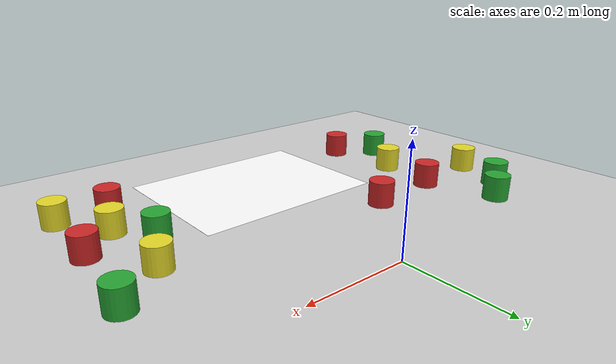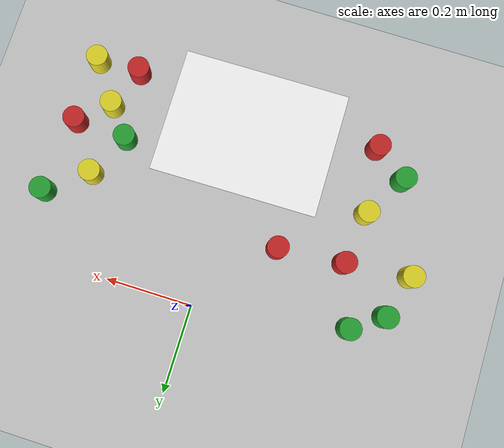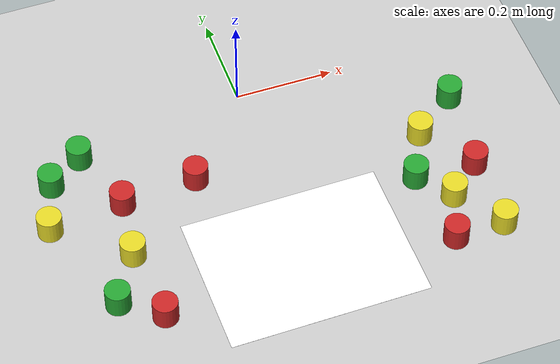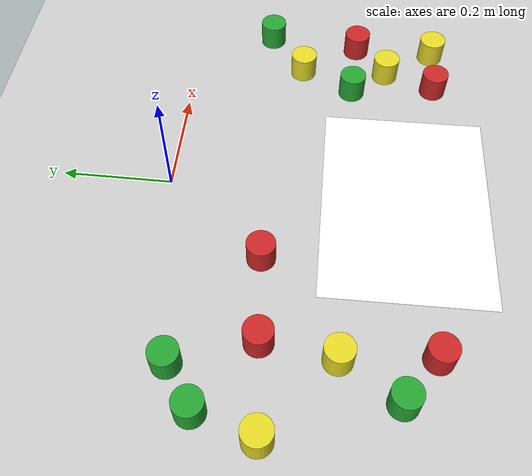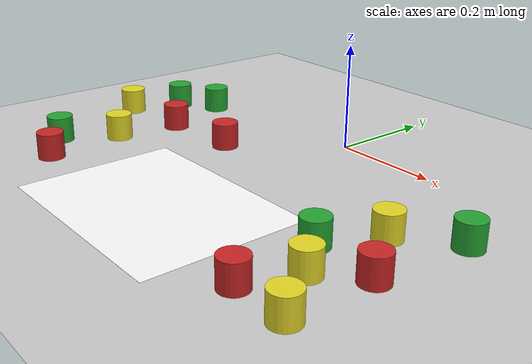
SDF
<sdf version="1.6">
 <world name="default">
  <model name="ground_plane">
   <static>1</static>
   <link name="link">
    <collision name="collision">
     <geometry><plane><normal>0 0 1</normal><size>100 100</size></plane></geometry>
     <surface>
      <contact><collide_bitmask>65535</collide_bitmask></contact>
      <friction><ode><mu>100</mu><mu2>50</mu2></ode></friction>
     </surface>
    </collision>
    <visual name="visual">
     <cast_shadows>0</cast_shadows>
     <geometry><plane><normal>0 0 1</normal><size>100 100</size></plane></geometry>
     <material>
      <script><uri>file://media/materials/scripts/gazebo.material</uri><name>Gazebo/Grey</name></script>
     </material>
    </visual>
   </link>
  </model>
  <model name="traffic_lights_board">
   <link name="link">
    <inertial>
     <mass>1</mass>
     <inertia><ixx>1</ixx><ixy>0</ixy><ixz>0</ixz><iyy>1</iyy><iyz>0</iyz><izz>1</izz></inertia>
    </inertial>
    <visual name="visual">
     <geometry><box><size>0.3 0.4 0.0001</size></box></geometry>
     <material>
      <script>
       <uri>model://traffic_lights_board/materials/scripts</uri>
       <uri>model://traffic_lights_board/materials/textures</uri>
       <name>Grid43</name>
      </script>
      <shader type="pixel"><normal_map>__default__</normal_map></shader>
      <ambient>1 1 1 1</ambient>
      <diffuse>1 1 1 1</diffuse>
      <specular>0 0 0 1</specular>
      <emissive>0 0 0 1</emissive>
     </material>
    </visual>
    <collision name="collision">
     <geometry><box><size>0.3 0.4 0.0003</size></box></geometry>
     <surface>
      <friction>
       <ode><mu>1</mu><mu2>1</mu2><fdir1>0 0 0</fdir1><slip1>0</slip1><slip2>0</slip2></ode>
       <torsional>
        <coefficient>1</coefficient>
        <patch_radius>0</patch_radius>
        <surface_radius>0</surface_radius>
        <use_patch_radius>1</use_patch_radius>
        <ode><slip>0</slip></ode>
       </torsional>
      </friction>
      <bounce><restitution_coefficient>0</restitution_coefficient><threshold>1e+06</threshold></bounce>
      <contact>
       <collide_without_contact>0</collide_without_contact>
       <collide_without_contact_bitmask>1</collide_without_contact_bitmask>
       <collide_bitmask>1</collide_bitmask>
       <ode>
        <soft_cfm>0</soft_cfm>
        <soft_erp>0.2</soft_erp>
        <kp>1e+13</kp>
        <kd>1</kd>
        <max_vel>0.01</max_vel>
        <min_depth>0</min_depth>
       </ode>
       <bullet>
        <split_impulse>1</split_impulse>
        <split_impulse_penetration_threshold>-0.01</split_impulse_penetration_threshold>
        <soft_cfm>0</soft_cfm>
        <soft_erp>0.2</soft_erp>
        <kp>1e+13</kp>
        <kd>1</kd>
       </bullet>
      </contact>
     </surface>
    </collision>
   </link>
   <static>1</static>
   <pose>-0.008431 -0.425021 0 0 0 -1.56</pose>
  </model>
  <model name="green_cylinder_short">
   <link name="blue_cylinder_link">
    <inertial>
     <mass>1</mass>
     <inertia><ixx>0.145833</ixx><ixy>0</ixy><ixz>0</ixz><iyy>0.145833</iyy><iyz>0</iyz><izz>0.125</izz></inertia>
    </inertial>
    <pose>-0 -0 0.025 0 -0 0</pose>
    <visual name="visual">
     <geometry><cylinder><radius>0.025</radius><length>0.05</length></cylinder></geometry>
     <material>
      <script><name>Gazebo/Green</name><uri>file://media/materials/scripts/gazebo.material</uri></script>
      <shader type="pixel"><normal_map>__default__</normal_map></shader>
      <ambient>0 1 0 1</ambient>
      <diffuse>0 1 0 1</diffuse>
      <specular>0 1 0 1</specular>
      <emissive>0 1 0 1</emissive>
     </material>
    </visual>
    <collision name="collision">
     <geometry><cylinder><radius>0.025</radius><length>0.05</length></cylinder></geometry>
     <surface>
      <friction>
       <ode><mu>1</mu><mu2>1</mu2><fdir1>0 0 0</fdir1><slip1>0</slip1><slip2>0</slip2></ode>
       <torsional>
        <coefficient>1</coefficient>
        <patch_radius>0</patch_radius>
        <surface_radius>0</surface_radius>
        <use_patch_radius>1</use_patch_radius>
        <ode><slip>0</slip></ode>
       </torsional>
      </friction>
      <bounce><restitution_coefficient>0</restitution_coefficient><threshold>1e+06</threshold></bounce>
      <contact>
       <collide_without_contact>0</collide_without_contact>
       <collide_without_contact_bitmask>1</collide_without_contact_bitmask>
       <collide_bitmask>1</collide_bitmask>
       <ode>
        <soft_cfm>0</soft_cfm>
        <soft_erp>0.2</soft_erp>
        <kp>1e+13</kp>
        <kd>1</kd>
        <max_vel>0.01</max_vel>
        <min_depth>0</min_depth>
       </ode>
       <bullet>
        <split_impulse>1</split_impulse>
        <split_impulse_penetration_threshold>-0.01</split_impulse_penetration_threshold>
        <soft_cfm>0</soft_cfm>
        <soft_erp>0.2</soft_erp>
        <kp>1e+13</kp>
        <kd>1</kd>
       </bullet>
      </contact>
     </surface>
    </collision>
   </link>
   <static>0</static>
   <pose>-0.347585 -0.056651 0 0 -0 0</pose>
  </model>
  <model name="green_cylinder_short_clone">
   <link name="blue_cylinder_link">
    <inertial>
     <mass>1</mass>
     <inertia><ixx>0.145833</ixx><ixy>0</ixy><ixz>0</ixz><iyy>0.145833</iyy><iyz>0</iyz><izz>0.125</izz></inertia>
    </inertial>
    <pose>-0 -0 0.025 0 -0 0</pose>
    <visual name="visual">
     <geometry><cylinder><radius>0.025</radius><length>0.05</length></cylinder></geometry>
     <material>
      <script><name>Gazebo/Green</name><uri>file://media/materials/scripts/gazebo.material</uri></script>
      <shader type="pixel"><normal_map>__default__</normal_map></shader>
      <ambient>0 1 0 1</ambient>
      <diffuse>0 1 0 1</diffuse>
      <specular>0 1 0 1</specular>
      <emissive>0 1 0 1</emissive>
     </material>
    </visual>
    <collision name="collision">
     <geometry><cylinder><radius>0.025</radius><length>0.05</length></cylinder></geometry>
     <surface>
      <friction>
       <ode><mu>1</mu><mu2>1</mu2><fdir1>0 0 0</fdir1><slip1>0</slip1><slip2>0</slip2></ode>
       <torsional>
        <coefficient>1</coefficient>
        <patch_radius>0</patch_radius>
        <surface_radius>0</surface_radius>
        <use_patch_radius>1</use_patch_radius>
        <ode><slip>0</slip></ode>
       </torsional>
      </friction>
      <bounce><restitution_coefficient>0</restitution_coefficient><threshold>1e+06</threshold></bounce>
      <contact>
       <collide_without_contact>0</collide_without_contact>
       <collide_without_contact_bitmask>1</collide_without_contact_bitmask>
       <collide_bitmask>1</collide_bitmask>
       <ode>
        <soft_cfm>0</soft_cfm>
        <soft_erp>0.2</soft_erp>
        <kp>1e+13</kp>
        <kd>1</kd>
        <max_vel>0.01</max_vel>
        <min_depth>0</min_depth>
       </ode>
       <bullet>
        <split_impulse>1</split_impulse>
        <split_impulse_penetration_threshold>-0.01</split_impulse_penetration_threshold>
        <soft_cfm>0</soft_cfm>
        <soft_erp>0.2</soft_erp>
        <kp>1e+13</kp>
        <kd>1</kd>
       </bullet>
      </contact>
     </surface>
    </collision>
   </link>
   <static>0</static>
   <pose>-0.418127 -0.105245 0 -1e-06 1e-06 -1e-06</pose>
  </model>
  <model name="green_cylinder_short_clone_0">
   <link name="blue_cylinder_link">
    <inertial>
     <mass>1</mass>
     <inertia><ixx>0.145833</ixx><ixy>0</ixy><ixz>0</ixz><iyy>0.145833</iyy><iyz>0</iyz><izz>0.125</izz></inertia>
    </inertial>
    <pose>-0 -0 0.025 0 -0 0</pose>
    <visual name="visual">
     <geometry><cylinder><radius>0.025</radius><length>0.05</length></cylinder></geometry>
     <material>
      <script><name>Gazebo/Green</name><uri>file://media/materials/scripts/gazebo.material</uri></script>
      <shader type="pixel"><normal_map>__default__</normal_map></shader>
      <ambient>0 1 0 1</ambient>
      <diffuse>0 1 0 1</diffuse>
      <specular>0 1 0 1</specular>
      <emissive>0 1 0 1</emissive>
     </material>
    </visual>
    <collision name="collision">
     <geometry><cylinder><radius>0.025</radius><length>0.05</length></cylinder></geometry>
     <surface>
      <friction>
       <ode><mu>1</mu><mu2>1</mu2><fdir1>0 0 0</fdir1><slip1>0</slip1><slip2>0</slip2></ode>
       <torsional>
        <coefficient>1</coefficient>
        <patch_radius>0</patch_radius>
        <surface_radius>0</surface_radius>
        <use_patch_radius>1</use_patch_radius>
        <ode><slip>0</slip></ode>
       </torsional>
      </friction>
      <bounce><restitution_coefficient>0</restitution_coefficient><threshold>1e+06</threshold></bounce>
      <contact>
       <collide_without_contact>0</collide_without_contact>
       <collide_without_contact_bitmask>1</collide_without_contact_bitmask>
       <collide_bitmask>1</collide_bitmask>
       <ode>
        <soft_cfm>0</soft_cfm>
        <soft_erp>0.2</soft_erp>
        <kp>1e+13</kp>
        <kd>1</kd>
        <max_vel>0.01</max_vel>
        <min_depth>0</min_depth>
       </ode>
       <bullet>
        <split_impulse>1</split_impulse>
        <split_impulse_penetration_threshold>-0.01</split_impulse_penetration_threshold>
        <soft_cfm>0</soft_cfm>
        <soft_erp>0.2</soft_erp>
        <kp>1e+13</kp>
        <kd>1</kd>
       </bullet>
      </contact>
     </surface>
    </collision>
   </link>
   <static>0</static>
   <pose>0.4 -0.149757 0 -1e-06 1e-06 -1e-06</pose>
  </model>
  <model name="green_cylinder_short_clone_1">
   <link name="blue_cylinder_link">
    <inertial>
     <mass>1</mass>
     <inertia><ixx>0.145833</ixx><ixy>0</ixy><ixz>0</ixz><iyy>0.145833</iyy><iyz>0</iyz><izz>0.125</izz></inertia>
    </inertial>
    <pose>-0 -0 0.025 0 -0 0</pose>
    <visual name="visual">
     <geometry><cylinder><radius>0.025</radius><length>0.05</length></cylinder></geometry>
     <material>
      <script><name>Gazebo/Green</name><uri>file://media/materials/scripts/gazebo.material</uri></script>
      <shader type="pixel"><normal_map>__default__</normal_map></shader>
      <ambient>0 1 0 1</ambient>
      <diffuse>0 1 0 1</diffuse>
      <specular>0 1 0 1</specular>
      <emissive>0 1 0 1</emissive>
     </material>
    </visual>
    <collision name="collision">
     <geometry><cylinder><radius>0.025</radius><length>0.05</length></cylinder></geometry>
     <surface>
      <friction>
       <ode><mu>1</mu><mu2>1</mu2><fdir1>0 0 0</fdir1><slip1>0</slip1><slip2>0</slip2></ode>
       <torsional>
        <coefficient>1</coefficient>
        <patch_radius>0</patch_radius>
        <surface_radius>0</surface_radius>
        <use_patch_radius>1</use_patch_radius>
        <ode><slip>0</slip></ode>
       </torsional>
      </friction>
      <bounce><restitution_coefficient>0</restitution_coefficient><threshold>1e+06</threshold></bounce>
      <contact>
       <collide_without_contact>0</collide_without_contact>
       <collide_without_contact_bitmask>1</collide_without_contact_bitmask>
       <collide_bitmask>1</collide_bitmask>
       <ode>
        <soft_cfm>0</soft_cfm>
        <soft_erp>0.2</soft_erp>
        <kp>1e+13</kp>
        <kd>1</kd>
        <max_vel>0.01</max_vel>
        <min_depth>0</min_depth>
       </ode>
       <bullet>
        <split_impulse>1</split_impulse>
        <split_impulse_penetration_threshold>-0.01</split_impulse_penetration_threshold>
        <soft_cfm>0</soft_cfm>
        <soft_erp>0.2</soft_erp>
        <kp>1e+13</kp>
        <kd>1</kd>
       </bullet>
      </contact>
     </surface>
    </collision>
   </link>
   <static>0</static>
   <pose>-0.375425 -0.415999 0 -1e-06 1e-06 -1e-06</pose>
  </model>
  <model name="green_cylinder_short_clone_2">
   <link name="blue_cylinder_link">
    <inertial>
     <mass>1</mass>
     <inertia><ixx>0.145833</ixx><ixy>0</ixy><ixz>0</ixz><iyy>0.145833</iyy><iyz>0</iyz><izz>0.125</izz></inertia>
    </inertial>
    <pose>-0 -0 0.025 0 -0 0</pose>
    <visual name="visual">
     <geometry><cylinder><radius>0.025</radius><length>0.05</length></cylinder></geometry>
     <material>
      <script><name>Gazebo/Green</name><uri>file://media/materials/scripts/gazebo.material</uri></script>
      <shader type="pixel"><normal_map>__default__</normal_map></shader>
      <ambient>0 1 0 1</ambient>
      <diffuse>0 1 0 1</diffuse>
      <specular>0 1 0 1</specular>
      <emissive>0 1 0 1</emissive>
     </material>
    </visual>
    <collision name="collision">
     <geometry><cylinder><radius>0.025</radius><length>0.05</length></cylinder></geometry>
     <surface>
      <friction>
       <ode><mu>1</mu><mu2>1</mu2><fdir1>0 0 0</fdir1><slip1>0</slip1><slip2>0</slip2></ode>
       <torsional>
        <coefficient>1</coefficient>
        <patch_radius>0</patch_radius>
        <surface_radius>0</surface_radius>
        <use_patch_radius>1</use_patch_radius>
        <ode><slip>0</slip></ode>
       </torsional>
      </friction>
      <bounce><restitution_coefficient>0</restitution_coefficient><threshold>1e+06</threshold></bounce>
      <contact>
       <collide_without_contact>0</collide_without_contact>
       <collide_without_contact_bitmask>1</collide_without_contact_bitmask>
       <collide_bitmask>1</collide_bitmask>
       <ode>
        <soft_cfm>0</soft_cfm>
        <soft_erp>0.2</soft_erp>
        <kp>1e+13</kp>
        <kd>1</kd>
        <max_vel>0.01</max_vel>
        <min_depth>0</min_depth>
       </ode>
       <bullet>
        <split_impulse>1</split_impulse>
        <split_impulse_penetration_threshold>-0.01</split_impulse_penetration_threshold>
        <soft_cfm>0</soft_cfm>
        <soft_erp>0.2</soft_erp>
        <kp>1e+13</kp>
        <kd>1</kd>
       </bullet>
      </contact>
     </surface>
    </collision>
   </link>
   <static>0</static>
   <pose>0.26 -0.32 0 -1e-06 1e-06 -1e-06</pose>
  </model>
  <model name="yellow_cylinder_short">
   <link name="blue_cylinder_link">
    <inertial>
     <mass>1</mass>
     <inertia><ixx>0.145833</ixx><ixy>0</ixy><ixz>0</ixz><iyy>0.145833</iyy><iyz>0</iyz><izz>0.125</izz></inertia>
    </inertial>
    <pose>-0 -0 0.025 0 -0 0</pose>
    <visual name="visual">
     <geometry><cylinder><radius>0.025</radius><length>0.05</length></cylinder></geometry>
     <material>
      <script><name>Gazebo/Yellow</name><uri>file://media/materials/scripts/gazebo.material</uri></script>
      <shader type="pixel"><normal_map>__default__</normal_map></shader>
      <ambient>1 0.8 0 1</ambient>
      <diffuse>1 0.8 0 1</diffuse>
      <specular>1 0.8 0 1</specular>
      <emissive>1 0.8 0 1</emissive>
     </material>
    </visual>
    <collision name="collision">
     <geometry><cylinder><radius>0.025</radius><length>0.05</length></cylinder></geometry>
     <surface>
      <friction>
       <ode><mu>1</mu><mu2>1</mu2><fdir1>0 0 0</fdir1><slip1>0</slip1><slip2>0</slip2></ode>
       <torsional>
        <coefficient>1</coefficient>
        <patch_radius>0</patch_radius>
        <surface_radius>0</surface_radius>
        <use_patch_radius>1</use_patch_radius>
        <ode><slip>0</slip></ode>
       </torsional>
      </friction>
      <bounce><restitution_coefficient>0</restitution_coefficient><threshold>1e+06</threshold></bounce>
      <contact>
       <collide_without_contact>0</collide_without_contact>
       <collide_without_contact_bitmask>1</collide_without_contact_bitmask>
       <collide_bitmask>1</collide_bitmask>
       <ode>
        <soft_cfm>0</soft_cfm>
        <soft_erp>0.2</soft_erp>
        <kp>1e+13</kp>
        <kd>1</kd>
        <max_vel>0.01</max_vel>
        <min_depth>0</min_depth>
       </ode>
       <bullet>
        <split_impulse>1</split_impulse>
        <split_impulse_penetration_threshold>-0.01</split_impulse_penetration_threshold>
        <soft_cfm>0</soft_cfm>
        <soft_erp>0.2</soft_erp>
        <kp>1e+13</kp>
        <kd>1</kd>
       </bullet>
      </contact>
     </surface>
    </collision>
   </link>
   <static>0</static>
   <pose>-0.44932 -0.207694 0 0 -0 0</pose>
  </model>
  <model name="yellow_cylinder_short_clone">
   <link name="blue_cylinder_link">
    <inertial>
     <mass>1</mass>
     <inertia><ixx>0.145833</ixx><ixy>0</ixy><ixz>0</ixz><iyy>0.145833</iyy><iyz>0</iyz><izz>0.125</izz></inertia>
    </inertial>
    <pose>-0 -0 0.025 0 -0 0</pose>
    <visual name="visual">
     <geometry><cylinder><radius>0.025</radius><length>0.05</length></cylinder></geometry>
     <material>
      <script><name>Gazebo/Yellow</name><uri>file://media/materials/scripts/gazebo.material</uri></script>
      <shader type="pixel"><normal_map>__default__</normal_map></shader>
      <ambient>1 0.8 0 1</ambient>
      <diffuse>1 0.8 0 1</diffuse>
      <specular>1 0.8 0 1</specular>
      <emissive>1 0.8 0 1</emissive>
     </material>
    </visual>
    <collision name="collision">
     <geometry><cylinder><radius>0.025</radius><length>0.05</length></cylinder></geometry>
     <surface>
      <friction>
       <ode><mu>1</mu><mu2>1</mu2><fdir1>0 0 0</fdir1><slip1>0</slip1><slip2>0</slip2></ode>
       <torsional>
        <coefficient>1</coefficient>
        <patch_radius>0</patch_radius>
        <surface_radius>0</surface_radius>
        <use_patch_radius>1</use_patch_radius>
        <ode><slip>0</slip></ode>
       </torsional>
      </friction>
      <bounce><restitution_coefficient>0</restitution_coefficient><threshold>1e+06</threshold></bounce>
      <contact>
       <collide_without_contact>0</collide_without_contact>
       <collide_without_contact_bitmask>1</collide_without_contact_bitmask>
       <collide_bitmask>1</collide_bitmask>
       <ode>
        <soft_cfm>0</soft_cfm>
        <soft_erp>0.2</soft_erp>
        <kp>1e+13</kp>
        <kd>1</kd>
        <max_vel>0.01</max_vel>
        <min_depth>0</min_depth>
       </ode>
       <bullet>
        <split_impulse>1</split_impulse>
        <split_impulse_penetration_threshold>-0.01</split_impulse_penetration_threshold>
        <soft_cfm>0</soft_cfm>
        <soft_erp>0.2</soft_erp>
        <kp>1e+13</kp>
        <kd>1</kd>
       </bullet>
      </contact>
     </surface>
    </collision>
   </link>
   <static>0</static>
   <pose>0.308689 -0.219999 -0 -1e-06 1e-06 -1e-06</pose>
  </model>
  <model name="yellow_cylinder_short_clone_0">
   <link name="blue_cylinder_link">
    <inertial>
     <mass>1</mass>
     <inertia><ixx>0.145833</ixx><ixy>0</ixy><ixz>0</ixz><iyy>0.145833</iyy><iyz>0</iyz><izz>0.125</izz></inertia>
    </inertial>
    <pose>-0 -0 0.025 0 -0 0</pose>
    <visual name="visual">
     <geometry><cylinder><radius>0.025</radius><length>0.05</length></cylinder></geometry>
     <material>
      <script><name>Gazebo/Yellow</name><uri>file://media/materials/scripts/gazebo.material</uri></script>
      <shader type="pixel"><normal_map>__default__</normal_map></shader>
      <ambient>1 0.8 0 1</ambient>
      <diffuse>1 0.8 0 1</diffuse>
      <specular>1 0.8 0 1</specular>
      <emissive>1 0.8 0 1</emissive>
     </material>
    </visual>
    <collision name="collision">
     <geometry><cylinder><radius>0.025</radius><length>0.05</length></cylinder></geometry>
     <surface>
      <friction>
       <ode><mu>1</mu><mu2>1</mu2><fdir1>0 0 0</fdir1><slip1>0</slip1><slip2>0</slip2></ode>
       <torsional>
        <coefficient>1</coefficient>
        <patch_radius>0</patch_radius>
        <surface_radius>0</surface_radius>
        <use_patch_radius>1</use_patch_radius>
        <ode><slip>0</slip></ode>
       </torsional>
      </friction>
      <bounce><restitution_coefficient>0</restitution_coefficient><threshold>1e+06</threshold></bounce>
      <contact>
       <collide_without_contact>0</collide_without_contact>
       <collide_without_contact_bitmask>1</collide_without_contact_bitmask>
       <collide_bitmask>1</collide_bitmask>
       <ode>
        <soft_cfm>0</soft_cfm>
        <soft_erp>0.2</soft_erp>
        <kp>1e+13</kp>
        <kd>1</kd>
        <max_vel>0.01</max_vel>
        <min_depth>0</min_depth>
       </ode>
       <bullet>
        <split_impulse>1</split_impulse>
        <split_impulse_penetration_threshold>-0.01</split_impulse_penetration_threshold>
        <soft_cfm>0</soft_cfm>
        <soft_erp>0.2</soft_erp>
        <kp>1e+13</kp>
        <kd>1</kd>
       </bullet>
      </contact>
     </surface>
    </collision>
   </link>
   <static>0</static>
   <pose>0.38 -0.48 -0 -1e-06 1e-06 -1e-06</pose>
  </model>
  <model name="yellow_cylinder_short_clone_1">
   <link name="blue_cylinder_link">
    <inertial>
     <mass>1</mass>
     <inertia><ixx>0.145833</ixx><ixy>0</ixy><ixz>0</ixz><iyy>0.145833</iyy><iyz>0</iyz><izz>0.125</izz></inertia>
    </inertial>
    <pose>-0 -0 0.025 0 -0 0</pose>
    <visual name="visual">
     <geometry><cylinder><radius>0.025</radius><length>0.05</length></cylinder></geometry>
     <material>
      <script><name>Gazebo/Yellow</name><uri>file://media/materials/scripts/gazebo.material</uri></script>
      <shader type="pixel"><normal_map>__default__</normal_map></shader>
      <ambient>1 0.8 0 1</ambient>
      <diffuse>1 0.8 0 1</diffuse>
      <specular>1 0.8 0 1</specular>
      <emissive>1 0.8 0 1</emissive>
     </material>
    </visual>
    <collision name="collision">
     <geometry><cylinder><radius>0.025</radius><length>0.05</length></cylinder></geometry>
     <surface>
      <friction>
       <ode><mu>1</mu><mu2>1</mu2><fdir1>0 0 0</fdir1><slip1>0</slip1><slip2>0</slip2></ode>
       <torsional>
        <coefficient>1</coefficient>
        <patch_radius>0</patch_radius>
        <surface_radius>0</surface_radius>
        <use_patch_radius>1</use_patch_radius>
        <ode><slip>0</slip></ode>
       </torsional>
      </friction>
      <bounce><restitution_coefficient>0</restitution_coefficient><threshold>1e+06</threshold></bounce>
      <contact>
       <collide_without_contact>0</collide_without_contact>
       <collide_without_contact_bitmask>1</collide_without_contact_bitmask>
       <collide_bitmask>1</collide_bitmask>
       <ode>
        <soft_cfm>0</soft_cfm>
        <soft_erp>0.2</soft_erp>
        <kp>1e+13</kp>
        <kd>1</kd>
        <max_vel>0.01</max_vel>
        <min_depth>0</min_depth>
       </ode>
       <bullet>
        <split_impulse>1</split_impulse>
        <split_impulse_penetration_threshold>-0.01</split_impulse_penetration_threshold>
        <soft_cfm>0</soft_cfm>
        <soft_erp>0.2</soft_erp>
        <kp>1e+13</kp>
        <kd>1</kd>
       </bullet>
      </contact>
     </surface>
    </collision>
   </link>
   <static>0</static>
   <pose>0.314098 -0.385947 -0 -1e-06 1e-06 -1e-06</pose>
  </model>
  <model name="yellow_cylinder_short_clone_2">
   <link name="blue_cylinder_link">
    <inertial>
     <mass>1</mass>
     <inertia><ixx>0.145833</ixx><ixy>0</ixy><ixz>0</ixz><iyy>0.145833</iyy><iyz>0</iyz><izz>0.125</izz></inertia>
    </inertial>
    <pose>-0 -0 0.025 0 -0 0</pose>
    <visual name="visual">
     <geometry><cylinder><radius>0.025</radius><length>0.05</length></cylinder></geometry>
     <material>
      <script><name>Gazebo/Yellow</name><uri>file://media/materials/scripts/gazebo.material</uri></script>
      <shader type="pixel"><normal_map>__default__</normal_map></shader>
      <ambient>1 0.8 0 1</ambient>
      <diffuse>1 0.8 0 1</diffuse>
      <specular>1 0.8 0 1</specular>
      <emissive>1 0.8 0 1</emissive>
     </material>
    </visual>
    <collision name="collision">
     <geometry><cylinder><radius>0.025</radius><length>0.05</length></cylinder></geometry>
     <surface>
      <friction>
       <ode><mu>1</mu><mu2>1</mu2><fdir1>0 0 0</fdir1><slip1>0</slip1><slip2>0</slip2></ode>
       <torsional>
        <coefficient>1</coefficient>
        <patch_radius>0</patch_radius>
        <surface_radius>0</surface_radius>
        <use_patch_radius>1</use_patch_radius>
        <ode><slip>0</slip></ode>
       </torsional>
      </friction>
      <bounce><restitution_coefficient>0</restitution_coefficient><threshold>1e+06</threshold></bounce>
      <contact>
       <collide_without_contact>0</collide_without_contact>
       <collide_without_contact_bitmask>1</collide_without_contact_bitmask>
       <collide_bitmask>1</collide_bitmask>
       <ode>
        <soft_cfm>0</soft_cfm>
        <soft_erp>0.2</soft_erp>
        <kp>1e+13</kp>
        <kd>1</kd>
        <max_vel>0.01</max_vel>
        <min_depth>0</min_depth>
       </ode>
       <bullet>
        <split_impulse>1</split_impulse>
        <split_impulse_penetration_threshold>-0.01</split_impulse_penetration_threshold>
        <soft_cfm>0</soft_cfm>
        <soft_erp>0.2</soft_erp>
        <kp>1e+13</kp>
        <kd>1</kd>
       </bullet>
      </contact>
     </surface>
    </collision>
   </link>
   <static>0</static>
   <pose>-0.316186 -0.317194 -0 -1e-06 1e-06 -1e-06</pose>
  </model>
  <model name="red_cylinder_short">
   <link name="link">
    <inertial>
     <mass>1</mass>
     <inertia><ixx>0.145833</ixx><ixy>0</ixy><ixz>0</ixz><iyy>0.145833</iyy><iyz>0</iyz><izz>0.125</izz></inertia>
    </inertial>
    <pose>0 -0 0.025 0 -0 0</pose>
    <visual name="visual">
     <geometry><cylinder><radius>0.025</radius><length>0.05</length></cylinder></geometry>
     <material>
      <script><name>Gazebo/Red</name><uri>file://media/materials/scripts/gazebo.material</uri></script>
      <shader type="pixel"><normal_map>__default__</normal_map></shader>
      <ambient>0.8 0 0 1</ambient>
      <diffuse>0.8 0 0 1</diffuse>
      <specular>0.8 0 0 1</specular>
      <emissive>0.8 0 0 1</emissive>
     </material>
    </visual>
    <collision name="collision">
     <geometry><cylinder><radius>0.025</radius><length>0.05</length></cylinder></geometry>
     <surface>
      <friction>
       <ode><mu>1</mu><mu2>1</mu2><fdir1>0 0 0</fdir1><slip1>0</slip1><slip2>0</slip2></ode>
       <torsional>
        <coefficient>1</coefficient>
        <patch_radius>0</patch_radius>
        <surface_radius>0</surface_radius>
        <use_patch_radius>1</use_patch_radius>
        <ode><slip>0</slip></ode>
       </torsional>
      </friction>
      <bounce><restitution_coefficient>0</restitution_coefficient><threshold>1e+06</threshold></bounce>
      <contact>
       <collide_without_contact>0</collide_without_contact>
       <collide_without_contact_bitmask>1</collide_without_contact_bitmask>
       <collide_bitmask>1</collide_bitmask>
       <ode>
        <soft_cfm>0</soft_cfm>
        <soft_erp>0.2</soft_erp>
        <kp>1e+13</kp>
        <kd>1</kd>
        <max_vel>0.01</max_vel>
        <min_depth>0</min_depth>
       </ode>
       <bullet>
        <split_impulse>1</split_impulse>
        <split_impulse_penetration_threshold>-0.01</split_impulse_penetration_threshold>
        <soft_cfm>0</soft_cfm>
        <soft_erp>0.2</soft_erp>
        <kp>1e+13</kp>
        <kd>1</kd>
       </bullet>
      </contact>
     </surface>
    </collision>
   </link>
   <static>0</static>
   <pose>-0.299447 -0.193277 0 0 -0 0</pose>
  </model>
  <model name="red_cylinder_short_clone">
   <link name="link">
    <inertial>
     <mass>1</mass>
     <inertia><ixx>0.145833</ixx><ixy>0</ixy><ixz>0</ixz><iyy>0.145833</iyy><iyz>0</iyz><izz>0.125</izz></inertia>
    </inertial>
    <pose>0 -0 0.025 0 -0 0</pose>
    <visual name="visual">
     <geometry><cylinder><radius>0.025</radius><length>0.05</length></cylinder></geometry>
     <material>
      <script><name>Gazebo/Red</name><uri>file://media/materials/scripts/gazebo.material</uri></script>
      <shader type="pixel"><normal_map>__default__</normal_map></shader>
      <ambient>0.8 0 0 1</ambient>
      <diffuse>0.8 0 0 1</diffuse>
      <specular>0.8 0 0 1</specular>
      <emissive>0.8 0 0 1</emissive>
     </material>
    </visual>
    <collision name="collision">
     <geometry><cylinder><radius>0.025</radius><length>0.05</length></cylinder></geometry>
     <surface>
      <friction>
       <ode><mu>1</mu><mu2>1</mu2><fdir1>0 0 0</fdir1><slip1>0</slip1><slip2>0</slip2></ode>
       <torsional>
        <coefficient>1</coefficient>
        <patch_radius>0</patch_radius>
        <surface_radius>0</surface_radius>
        <use_patch_radius>1</use_patch_radius>
        <ode><slip>0</slip></ode>
       </torsional>
      </friction>
      <bounce><restitution_coefficient>0</restitution_coefficient><threshold>1e+06</threshold></bounce>
      <contact>
       <collide_without_contact>0</collide_without_contact>
       <collide_without_contact_bitmask>1</collide_without_contact_bitmask>
       <collide_bitmask>1</collide_bitmask>
       <ode>
        <soft_cfm>0</soft_cfm>
        <soft_erp>0.2</soft_erp>
        <kp>1e+13</kp>
        <kd>1</kd>
        <max_vel>0.01</max_vel>
        <min_depth>0</min_depth>
       </ode>
       <bullet>
        <split_impulse>1</split_impulse>
        <split_impulse_penetration_threshold>-0.01</split_impulse_penetration_threshold>
        <soft_cfm>0</soft_cfm>
        <soft_erp>0.2</soft_erp>
        <kp>1e+13</kp>
        <kd>1</kd>
       </bullet>
      </contact>
     </surface>
    </collision>
   </link>
   <static>0</static>
   <pose>-0.146653 -0.180782 -0 -1e-06 2e-06 -2e-06</pose>
  </model>
  <model name="red_cylinder_short_clone_0">
   <link name="link">
    <inertial>
     <mass>1</mass>
     <inertia><ixx>0.145833</ixx><ixy>0</ixy><ixz>0</ixz><iyy>0.145833</iyy><iyz>0</iyz><izz>0.125</izz></inertia>
    </inertial>
    <pose>0 -0 0.025 0 -0 0</pose>
    <visual name="visual">
     <geometry><cylinder><radius>0.025</radius><length>0.05</length></cylinder></geometry>
     <material>
      <script><name>Gazebo/Red</name><uri>file://media/materials/scripts/gazebo.material</uri></script>
      <shader type="pixel"><normal_map>__default__</normal_map></shader>
      <ambient>0.8 0 0 1</ambient>
      <diffuse>0.8 0 0 1</diffuse>
      <specular>0.8 0 0 1</specular>
      <emissive>0.8 0 0 1</emissive>
     </material>
    </visual>
    <collision name="collision">
     <geometry><cylinder><radius>0.025</radius><length>0.05</length></cylinder></geometry>
     <surface>
      <friction>
       <ode><mu>1</mu><mu2>1</mu2><fdir1>0 0 0</fdir1><slip1>0</slip1><slip2>0</slip2></ode>
       <torsional>
        <coefficient>1</coefficient>
        <patch_radius>0</patch_radius>
        <surface_radius>0</surface_radius>
        <use_patch_radius>1</use_patch_radius>
        <ode><slip>0</slip></ode>
       </torsional>
      </friction>
      <bounce><restitution_coefficient>0</restitution_coefficient><threshold>1e+06</threshold></bounce>
      <contact>
       <collide_without_contact>0</collide_without_contact>
       <collide_without_contact_bitmask>1</collide_without_contact_bitmask>
       <collide_bitmask>1</collide_bitmask>
       <ode>
        <soft_cfm>0</soft_cfm>
        <soft_erp>0.2</soft_erp>
        <kp>1e+13</kp>
        <kd>1</kd>
        <max_vel>0.01</max_vel>
        <min_depth>0</min_depth>
       </ode>
       <bullet>
        <split_impulse>1</split_impulse>
        <split_impulse_penetration_threshold>-0.01</split_impulse_penetration_threshold>
        <soft_cfm>0</soft_cfm>
        <soft_erp>0.2</soft_erp>
        <kp>1e+13</kp>
        <kd>1</kd>
       </bullet>
      </contact>
     </surface>
    </collision>
   </link>
   <static>0</static>
   <pose>0.279531 -0.481682 -0 -1e-06 2e-06 -2e-06</pose>
  </model>
  <model name="red_cylinder_short_clone_1">
   <link name="link">
    <inertial>
     <mass>1</mass>
     <inertia><ixx>0.145833</ixx><ixy>0</ixy><ixz>0</ixz><iyy>0.145833</iyy><iyz>0</iyz><izz>0.125</izz></inertia>
    </inertial>
    <pose>0 -0 0.025 0 -0 0</pose>
    <visual name="visual">
     <geometry><cylinder><radius>0.025</radius><length>0.05</length></cylinder></geometry>
     <material>
      <script><name>Gazebo/Red</name><uri>file://media/materials/scripts/gazebo.material</uri></script>
      <shader type="pixel"><normal_map>__default__</normal_map></shader>
      <ambient>0.8 0 0 1</ambient>
      <diffuse>0.8 0 0 1</diffuse>
      <specular>0.8 0 0 1</specular>
      <emissive>0.8 0 0 1</emissive>
     </material>
    </visual>
    <collision name="collision">
     <geometry><cylinder><radius>0.025</radius><length>0.05</length></cylinder></geometry>
     <surface>
      <friction>
       <ode><mu>1</mu><mu2>1</mu2><fdir1>0 0 0</fdir1><slip1>0</slip1><slip2>0</slip2></ode>
       <torsional>
        <coefficient>1</coefficient>
        <patch_radius>0</patch_radius>
        <surface_radius>0</surface_radius>
        <use_patch_radius>1</use_patch_radius>
        <ode><slip>0</slip></ode>
       </torsional>
      </friction>
      <bounce><restitution_coefficient>0</restitution_coefficient><threshold>1e+06</threshold></bounce>
      <contact>
       <collide_without_contact>0</collide_without_contact>
       <collide_without_contact_bitmask>1</collide_without_contact_bitmask>
       <collide_bitmask>1</collide_bitmask>
       <ode>
        <soft_cfm>0</soft_cfm>
        <soft_erp>0.2</soft_erp>
        <kp>1e+13</kp>
        <kd>1</kd>
        <max_vel>0.01</max_vel>
        <min_depth>0</min_depth>
       </ode>
       <bullet>
        <split_impulse>1</split_impulse>
        <split_impulse_penetration_threshold>-0.01</split_impulse_penetration_threshold>
        <soft_cfm>0</soft_cfm>
        <soft_erp>0.2</soft_erp>
        <kp>1e+13</kp>
        <kd>1</kd>
       </bullet>
      </contact>
     </surface>
    </collision>
   </link>
   <static>0</static>
   <pose>0.382464 -0.325984 -0 -1e-06 2e-06 -2e-06</pose>
  </model>
  <model name="red_cylinder_short_clone_2">
   <link name="link">
    <inertial>
     <mass>1</mass>
     <inertia><ixx>0.145833</ixx><ixy>0</ixy><ixz>0</ixz><iyy>0.145833</iyy><iyz>0</iyz><izz>0.125</izz></inertia>
    </inertial>
    <pose>0 -0 0.025 0 -0 0</pose>
    <visual name="visual">
     <geometry><cylinder><radius>0.025</radius><length>0.05</length></cylinder></geometry>
     <material>
      <script><name>Gazebo/Red</name><uri>file://media/materials/scripts/gazebo.material</uri></script>
      <shader type="pixel"><normal_map>__default__</normal_map></shader>
      <ambient>0.8 0 0 1</ambient>
      <diffuse>0.8 0 0 1</diffuse>
      <specular>0.8 0 0 1</specular>
      <emissive>0.8 0 0 1</emissive>
     </material>
    </visual>
    <collision name="collision">
     <geometry><cylinder><radius>0.025</radius><length>0.05</length></cylinder></geometry>
     <surface>
      <friction>
       <ode><mu>1</mu><mu2>1</mu2><fdir1>0 0 0</fdir1><slip1>0</slip1><slip2>0</slip2></ode>
       <torsional>
        <coefficient>1</coefficient>
        <patch_radius>0</patch_radius>
        <surface_radius>0</surface_radius>
        <use_patch_radius>1</use_patch_radius>
        <ode><slip>0</slip></ode>
       </torsional>
      </friction>
      <bounce><restitution_coefficient>0</restitution_coefficient><threshold>1e+06</threshold></bounce>
      <contact>
       <collide_without_contact>0</collide_without_contact>
       <collide_without_contact_bitmask>1</collide_without_contact_bitmask>
       <collide_bitmask>1</collide_bitmask>
       <ode>
        <soft_cfm>0</soft_cfm>
        <soft_erp>0.2</soft_erp>
        <kp>1e+13</kp>
        <kd>1</kd>
        <max_vel>0.01</max_vel>
        <min_depth>0</min_depth>
       </ode>
       <bullet>
        <split_impulse>1</split_impulse>
        <split_impulse_penetration_threshold>-0.01</split_impulse_penetration_threshold>
        <soft_cfm>0</soft_cfm>
        <soft_erp>0.2</soft_erp>
        <kp>1e+13</kp>
        <kd>1</kd>
       </bullet>
      </contact>
     </surface>
    </collision>
   </link>
   <static>0</static>
   <pose>-0.3 -0.471031 -0 -1e-06 2e-06 -2e-06</pose>
  </model>
 </world>
</sdf>
